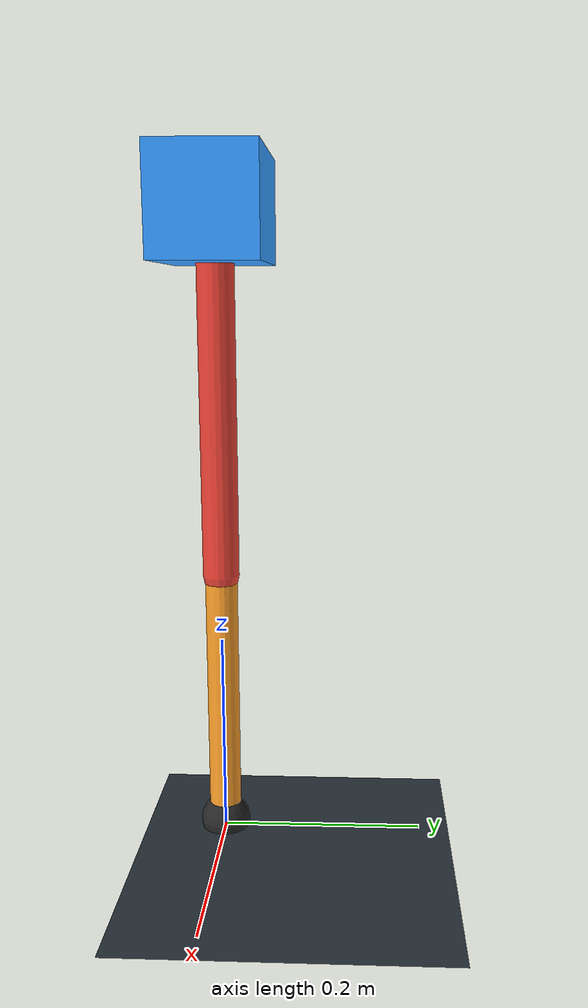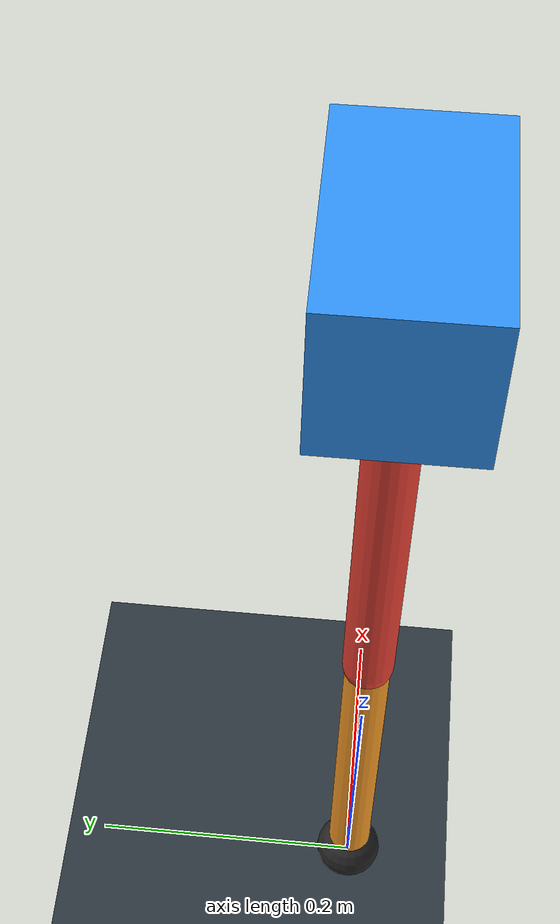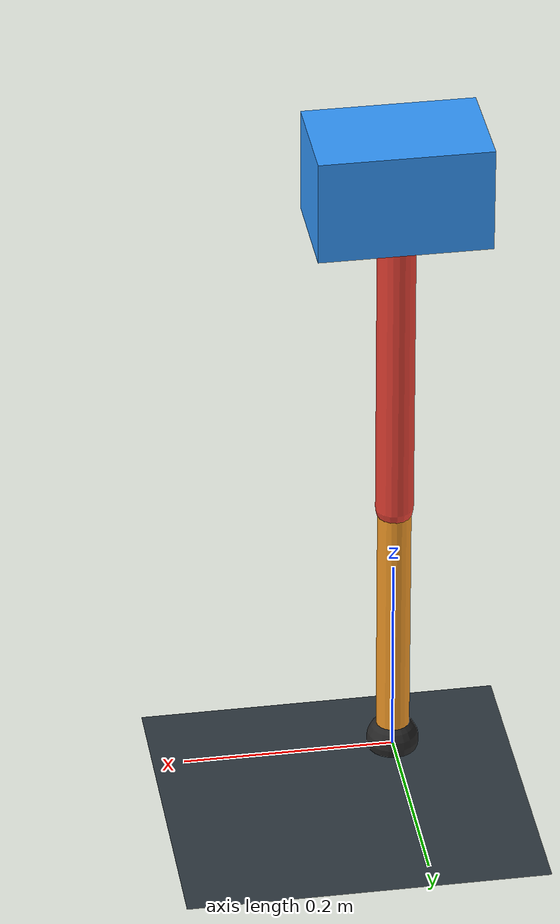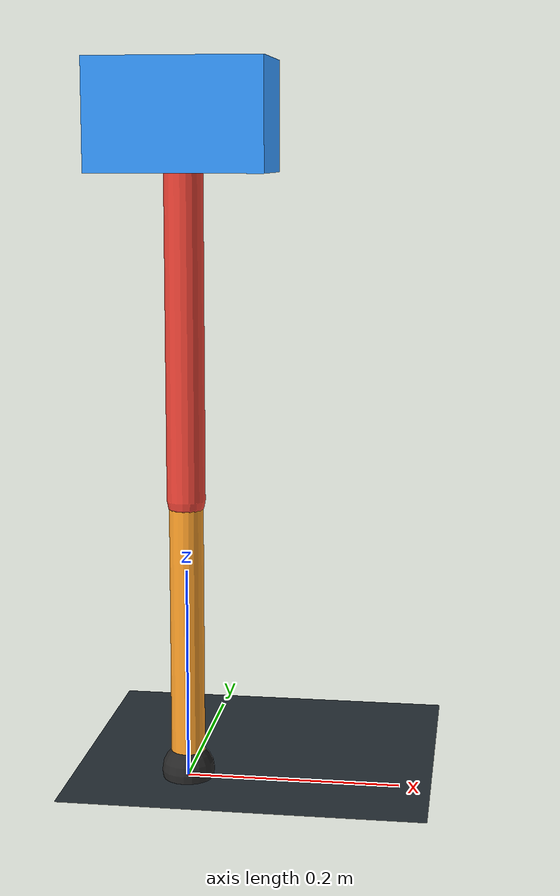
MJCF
<mujoco model="single_axis_two_bar">
  <compiler angle="radian" inertiafromgeom="true"/>
  <option timestep="0.001" integrator="implicitfast" gravity="0 0 -9.81"/>
  <default>
    <joint damping="0.08"/>
    <geom friction="1.2 0.01 0.0001" condim="3"/>
  </default>
  <worldbody>
    <geom name="floor" type="plane" size="5 5 0.1" rgba="0.18 0.22 0.25 1"/>
    <body name="carriage" pos="0 0 0.6172530393513616">
      <joint name="pole_slide" type="slide" axis="0 0 1"/>
      <geom name="payload" type="box" size="0.08 0.05 0.05" mass="2.7292301383807005" rgba="0.2 0.6 1 1"/>
      <body name="thigh" pos="0 0 0">
        <joint name="hip" type="hinge" axis="0 1 0"/>
        <geom name="thigh_link" type="capsule" fromto="0 0 0 0 0 -0.3497510020234518" size="0.018" mass="0.24920221049344915" rgba="0.9 0.25 0.2 1"/>
        <body name="shank" pos="0 0 -0.3497510020234518">
          <joint name="knee" type="hinge" axis="0 1 0"/>
          <geom name="shank_link" type="capsule" fromto="0 0 0 0 0 -0.26081914163774567" size="0.016" mass="0.18583708483777844" rgba="0.95 0.6 0.15 1"/>
          <geom name="foot" type="sphere" pos="0 0 -0.26081914163774567" size="0.025" mass="0.03" rgba="0.15 0.15 0.15 1"/>
          <site name="toe" pos="0 0 -0.26081914163774567" size="0.008"/>
        </body>
      </body>
    </body>
  </worldbody>
  <actuator>
    <motor name="hip_motor" joint="hip" ctrlrange="-31.02566192518187 31.02566192518187"/>
    <motor name="knee_motor" joint="knee" ctrlrange="-108.14699518545326 108.14699518545326"/>
  </actuator>
</mujoco>
